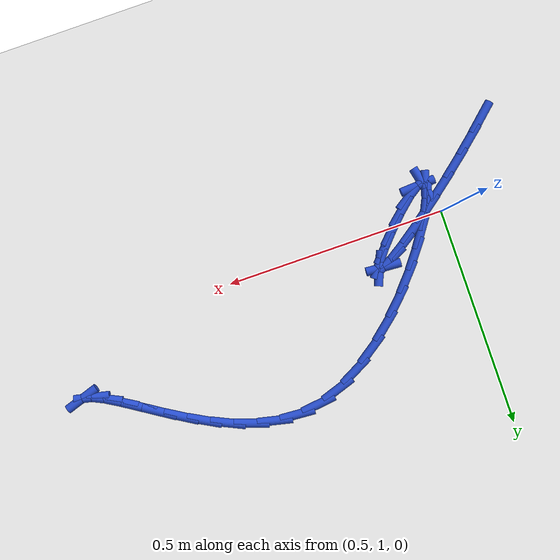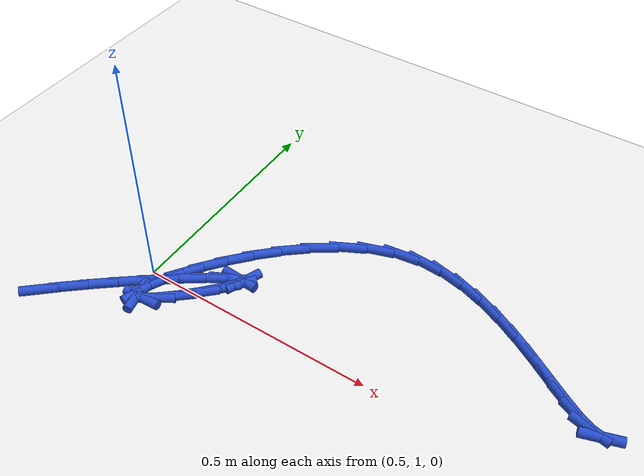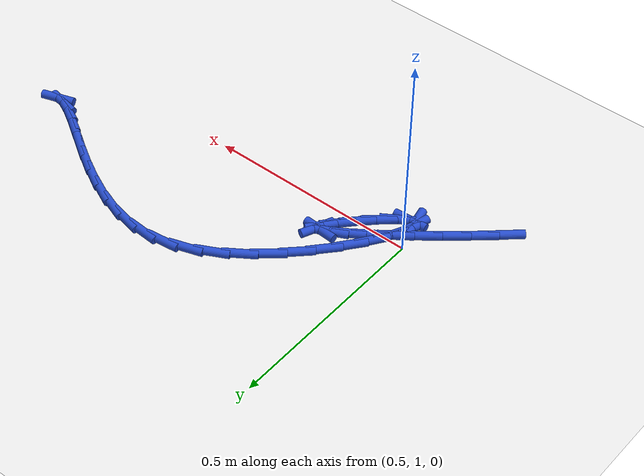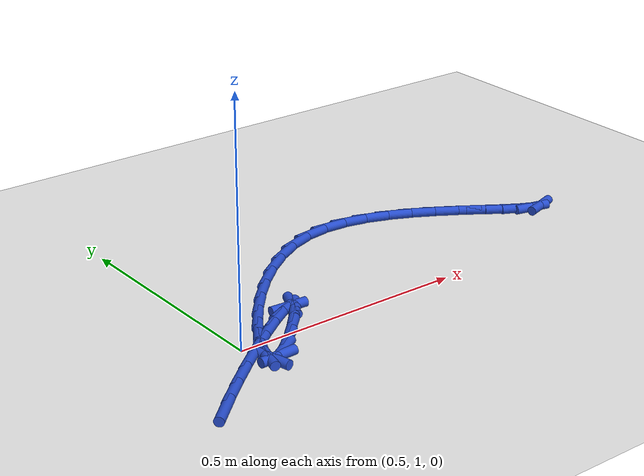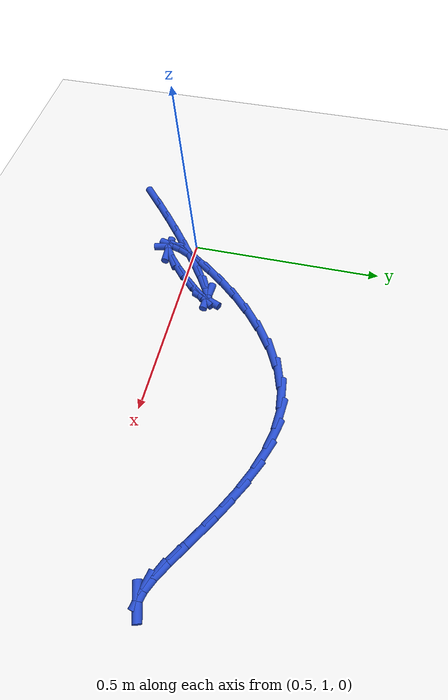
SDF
<sdf version="1.6">
 <world name="default">
  <model name="ground_plane">
   <static>1</static>
   <link name="link">
    <collision name="collision">
     <geometry><plane><normal>0 0 1</normal><size>100 100</size></plane></geometry>
     <surface><friction><ode><mu>100</mu><mu2>50</mu2></ode></friction></surface>
    </collision>
    <visual name="visual">
     <cast_shadows>0</cast_shadows>
     <geometry><plane><normal>0 0 1</normal><size>100 100</size></plane></geometry>
     <material>
      <script><uri>file://media/materials/scripts/gazebo.material</uri><name>Gazebo/WhiteGlow</name></script>
     </material>
    </visual>
   </link>
  </model>
  <model name="line">
   <link name="link_24">
    <pose>0.3486897092366932 0.8319574195822164 0.01 0 1.57 0.7389527702259174</pose>
    <collision name="collision">
     <geometry><cylinder><radius>0.01</radius><length>0.08</length></cylinder></geometry>
    </collision>
    <visual name="visual">
     <material>
      <script><name>Gazebo/Blue</name><uri>file://media/materials/scripts/gazebo.material</uri></script>
     </material>
     <geometry><cylinder><radius>0.01</radius><length>0.08</length></cylinder></geometry>
    </visual>
   </link>
   <link name="link_25">
    <pose>0.3904525261471602 0.8700104883907056 0.01 0 1.57 0.713051230423906</pose>
    <collision name="collision">
     <geometry><cylinder><radius>0.01</radius><length>0.08</length></cylinder></geometry>
    </collision>
    <visual name="visual">
     <material>
      <script><name>Gazebo/Blue</name><uri>file://media/materials/scripts/gazebo.material</uri></script>
     </material>
     <geometry><cylinder><radius>0.01</radius><length>0.08</length></cylinder></geometry>
    </visual>
   </link>
   <link name="link_26">
    <pose>0.4358175566111806 0.9092443478881133 0.01 0 1.57 0.691025362570678</pose>
    <collision name="collision">
     <geometry><cylinder><radius>0.01</radius><length>0.08</length></cylinder></geometry>
    </collision>
    <visual name="visual">
     <material>
      <script><name>Gazebo/Blue</name><uri>file://media/materials/scripts/gazebo.material</uri></script>
     </material>
     <geometry><cylinder><radius>0.01</radius><length>0.08</length></cylinder></geometry>
    </visual>
   </link>
   <link name="link_27">
    <pose>0.482954425083118 0.9482294315945302 0.01 0 1.57 0.6702667946903883</pose>
    <collision name="collision">
     <geometry><cylinder><radius>0.01</radius><length>0.08</length></cylinder></geometry>
    </collision>
    <visual name="visual">
     <material>
      <script><name>Gazebo/Blue</name><uri>file://media/materials/scripts/gazebo.material</uri></script>
     </material>
     <geometry><cylinder><radius>0.01</radius><length>0.08</length></cylinder></geometry>
    </visual>
   </link>
   <link name="link_28">
    <pose>0.5295354398446693 0.9851536672167511 0.01 0 1.57 0.6475634134900935</pose>
    <collision name="collision">
     <geometry><cylinder><radius>0.01</radius><length>0.08</length></cylinder></geometry>
    </collision>
    <visual name="visual">
     <material>
      <script><name>Gazebo/Blue</name><uri>file://media/materials/scripts/gazebo.material</uri></script>
     </material>
     <geometry><cylinder><radius>0.01</radius><length>0.08</length></cylinder></geometry>
    </visual>
   </link>
   <link name="link_29">
    <pose>0.5732328388944536 1.0182049284040373 0.01 0 1.57 0.6181152855131918</pose>
    <collision name="collision">
     <geometry><cylinder><radius>0.01</radius><length>0.08</length></cylinder></geometry>
    </collision>
    <visual name="visual">
     <material>
      <script><name>Gazebo/Blue</name><uri>file://media/materials/scripts/gazebo.material</uri></script>
     </material>
     <geometry><cylinder><radius>0.01</radius><length>0.08</length></cylinder></geometry>
    </visual>
   </link>
   <link name="link_30">
    <pose>0.6117188602310893 1.0455710888056489 0.01 0 1.57 0.5707544339160211</pose>
    <collision name="collision">
     <geometry><cylinder><radius>0.01</radius><length>0.08</length></cylinder></geometry>
    </collision>
    <visual name="visual">
     <material>
      <script><name>Gazebo/Blue</name><uri>file://media/materials/scripts/gazebo.material</uri></script>
     </material>
     <geometry><cylinder><radius>0.01</radius><length>0.08</length></cylinder></geometry>
    </visual>
   </link>
   <link name="link_31">
    <pose>0.6426657418531954 1.065440022070847 0.01 0 1.57 0.4643907801852915</pose>
    <collision name="collision">
     <geometry><cylinder><radius>0.01</radius><length>0.08</length></cylinder></geometry>
    </collision>
    <visual name="visual">
     <material>
      <script><name>Gazebo/Blue</name><uri>file://media/materials/scripts/gazebo.material</uri></script>
     </material>
     <geometry><cylinder><radius>0.01</radius><length>0.08</length></cylinder></geometry>
    </visual>
   </link>
   <link name="link_32">
    <pose>0.663745721759391 1.0759996018488929 0.01 0 1.57 -0.06315507419108564</pose>
    <collision name="collision">
     <geometry><cylinder><radius>0.01</radius><length>0.08</length></cylinder></geometry>
    </collision>
    <visual name="visual">
     <material>
      <script><name>Gazebo/Blue</name><uri>file://media/materials/scripts/gazebo.material</uri></script>
     </material>
     <geometry><cylinder><radius>0.01</radius><length>0.08</length></cylinder></geometry>
    </visual>
   </link>
   <link name="link_33">
    <pose>0.6726310379482943 1.0754377017890464 0.01 0 1.57 1.1757035624971568</pose>
    <collision name="collision">
     <geometry><cylinder><radius>0.01</radius><length>0.08</length></cylinder></geometry>
    </collision>
    <visual name="visual">
     <material>
      <script><name>Gazebo/Blue</name><uri>file://media/materials/scripts/gazebo.material</uri></script>
     </material>
     <geometry><cylinder><radius>0.01</radius><length>0.08</length></cylinder></geometry>
    </visual>
   </link>
   <link name="link_34">
    <pose>0.6670097155767161 1.0619579823420613 0.01 0 1.57 0.9104373135603664</pose>
    <collision name="collision">
     <geometry><cylinder><radius>0.01</radius><length>0.08</length></cylinder></geometry>
    </collision>
    <visual name="visual">
     <material>
      <script><name>Gazebo/Blue</name><uri>file://media/materials/scripts/gazebo.material</uri></script>
     </material>
     <geometry><cylinder><radius>0.01</radius><length>0.08</length></cylinder></geometry>
    </visual>
   </link>
   <link name="link_35">
    <pose>0.6469979684740267 1.0361922377680914 0.01 0 1.57 0.8361851049577573</pose>
    <collision name="collision">
     <geometry><cylinder><radius>0.01</radius><length>0.08</length></cylinder></geometry>
    </collision>
    <visual name="visual">
     <material>
      <script><name>Gazebo/Blue</name><uri>file://media/materials/scripts/gazebo.material</uri></script>
     </material>
     <geometry><cylinder><radius>0.01</radius><length>0.08</length></cylinder></geometry>
    </visual>
   </link>
   <link name="link_36">
    <pose>0.6177358901534481 1.0037960285002312 0.01 0 1.57 0.785380018939962</pose>
    <collision name="collision">
     <geometry><cylinder><radius>0.01</radius><length>0.08</length></cylinder></geometry>
    </collision>
    <visual name="visual">
     <material>
      <script><name>Gazebo/Blue</name><uri>file://media/materials/scripts/gazebo.material</uri></script>
     </material>
     <geometry><cylinder><radius>0.01</radius><length>0.08</length></cylinder></geometry>
    </visual>
   </link>
   <link name="link_37">
    <pose>0.5849862254455672 0.971047552220585 0.01 0 1.57 0.721746941263223</pose>
    <collision name="collision">
     <geometry><cylinder><radius>0.01</radius><length>0.08</length></cylinder></geometry>
    </collision>
    <visual name="visual">
     <material>
      <script><name>Gazebo/Blue</name><uri>file://media/materials/scripts/gazebo.material</uri></script>
     </material>
     <geometry><cylinder><radius>0.01</radius><length>0.08</length></cylinder></geometry>
    </visual>
   </link>
   <link name="link_38">
    <pose>0.5545117191809708 0.9442250066112579 0.01 0 1.57 0.5802501104872282</pose>
    <collision name="collision">
     <geometry><cylinder><radius>0.01</radius><length>0.08</length></cylinder></geometry>
    </collision>
    <visual name="visual">
     <material>
      <script><name>Gazebo/Blue</name><uri>file://media/materials/scripts/gazebo.material</uri></script>
     </material>
     <geometry><cylinder><radius>0.01</radius><length>0.08</length></cylinder></geometry>
    </visual>
   </link>
   <link name="link_39">
    <pose>0.5319269630924486 0.9294201123179662 0.01 0 1.57 0.05825708162466657</pose>
    <collision name="collision">
     <geometry><cylinder><radius>0.01</radius><length>0.08</length></cylinder></geometry>
    </collision>
    <visual name="visual">
     <material>
      <script><name>Gazebo/Blue</name><uri>file://media/materials/scripts/gazebo.material</uri></script>
     </material>
     <geometry><cylinder><radius>0.01</radius><length>0.08</length></cylinder></geometry>
    </visual>
   </link>
   <link name="link_40">
    <pose>0.5196524306774435 0.9287042238161648 0.01 0 1.57 -1.3477601561598183</pose>
    <collision name="collision">
     <geometry><cylinder><radius>0.01</radius><length>0.08</length></cylinder></geometry>
    </collision>
    <visual name="visual">
     <material>
      <script><name>Gazebo/Blue</name><uri>file://media/materials/scripts/gazebo.material</uri></script>
     </material>
     <geometry><cylinder><radius>0.01</radius><length>0.08</length></cylinder></geometry>
    </visual>
   </link>
   <link name="link_41">
    <pose>0.5170287198978547 0.9402721241774438 0.01 0 1.57 1.292983288149223</pose>
    <collision name="collision">
     <geometry><cylinder><radius>0.01</radius><length>0.08</length></cylinder></geometry>
    </collision>
    <visual name="visual">
     <material>
      <script><name>Gazebo/Blue</name><uri>file://media/materials/scripts/gazebo.material</uri></script>
     </material>
     <geometry><cylinder><radius>0.01</radius><length>0.08</length></cylinder></geometry>
    </visual>
   </link>
   <link name="link_42">
    <pose>0.5232711336597228 0.9621608903502122 0.01 0 1.57 1.1285178929318345</pose>
    <collision name="collision">
     <geometry><cylinder><radius>0.01</radius><length>0.08</length></cylinder></geometry>
    </collision>
    <visual name="visual">
     <material>
      <script><name>Gazebo/Blue</name><uri>file://media/materials/scripts/gazebo.material</uri></script>
     </material>
     <geometry><cylinder><radius>0.01</radius><length>0.08</length></cylinder></geometry>
    </visual>
   </link>
   <link name="link_43">
    <pose>0.5375949748690882 0.9924075992828795 0.01 0 1.57 1.0377227075274398</pose>
    <collision name="collision">
     <geometry><cylinder><radius>0.01</radius><length>0.08</length></cylinder></geometry>
    </collision>
    <visual name="visual">
     <material>
      <script><name>Gazebo/Blue</name><uri>file://media/materials/scripts/gazebo.material</uri></script>
     </material>
     <geometry><cylinder><radius>0.01</radius><length>0.08</length></cylinder></geometry>
    </visual>
   </link>
   <link name="link_44">
    <pose>0.5592155464319909 1.0290493279238542 0.01 0 1.57 0.9702577181841804</pose>
    <collision name="collision">
     <geometry><cylinder><radius>0.01</radius><length>0.08</length></cylinder></geometry>
    </collision>
    <visual name="visual">
     <material>
      <script><name>Gazebo/Blue</name><uri>file://media/materials/scripts/gazebo.material</uri></script>
     </material>
     <geometry><cylinder><radius>0.01</radius><length>0.08</length></cylinder></geometry>
    </visual>
   </link>
   <link name="link_45">
    <pose>0.5873481512544718 1.070123153221546 0.01 0 1.57 0.9098509839630275</pose>
    <collision name="collision">
     <geometry><cylinder><radius>0.01</radius><length>0.08</length></cylinder></geometry>
    </collision>
    <visual name="visual">
     <material>
      <script><name>Gazebo/Blue</name><uri>file://media/materials/scripts/gazebo.material</uri></script>
     </material>
     <geometry><cylinder><radius>0.01</radius><length>0.08</length></cylinder></geometry>
    </visual>
   </link>
   <link name="link_46">
    <pose>0.6212080922425705 1.1136661521243638 0.01 0 1.57 0.8486396500593082</pose>
    <collision name="collision">
     <geometry><cylinder><radius>0.01</radius><length>0.08</length></cylinder></geometry>
    </collision>
    <visual name="visual">
     <material>
      <script><name>Gazebo/Blue</name><uri>file://media/materials/scripts/gazebo.material</uri></script>
     </material>
     <geometry><cylinder><radius>0.01</radius><length>0.08</length></cylinder></geometry>
    </visual>
   </link>
   <link name="link_47">
    <pose>0.6600106723023277 1.1577154015807163 0.01 0 1.57 0.781097409656063</pose>
    <collision name="collision">
     <geometry><cylinder><radius>0.01</radius><length>0.08</length></cylinder></geometry>
    </collision>
    <visual name="visual">
     <material>
      <script><name>Gazebo/Blue</name><uri>file://media/materials/scripts/gazebo.material</uri></script>
     </material>
     <geometry><cylinder><radius>0.01</radius><length>0.08</length></cylinder></geometry>
    </visual>
   </link>
   <link name="link_48">
    <pose>0.7029711943397837 1.2003079785390132 0.01 0 1.57 0.7018478522293659</pose>
    <collision name="collision">
     <geometry><cylinder><radius>0.01</radius><length>0.08</length></cylinder></geometry>
    </collision>
    <visual name="visual">
     <material>
      <script><name>Gazebo/Blue</name><uri>file://media/materials/scripts/gazebo.material</uri></script>
     </material>
     <geometry><cylinder><radius>0.01</radius><length>0.08</length></cylinder></geometry>
    </visual>
   </link>
   <link name="link_49">
    <pose>0.7493049612609786 1.2394809599476633 0.01 0 1.57 0.6044545552586118</pose>
    <collision name="collision">
     <geometry><cylinder><radius>0.01</radius><length>0.08</length></cylinder></geometry>
    </collision>
    <visual name="visual">
     <material>
      <script><name>Gazebo/Blue</name><uri>file://media/materials/scripts/gazebo.material</uri></script>
     </material>
     <geometry><cylinder><radius>0.01</radius><length>0.08</length></cylinder></geometry>
    </visual>
   </link>
   <link name="link_50">
    <pose>0.7982272759719531 1.2732714227550757 0.01 0 1.57 0.4805648511193775</pose>
    <collision name="collision">
     <geometry><cylinder><radius>0.01</radius><length>0.08</length></cylinder></geometry>
    </collision>
    <visual name="visual">
     <material>
      <script><name>Gazebo/Blue</name><uri>file://media/materials/scripts/gazebo.material</uri></script>
     </material>
     <geometry><cylinder><radius>0.01</radius><length>0.08</length></cylinder></geometry>
    </visual>
   </link>
   <link name="link_51">
    <pose>0.8489534413787472 1.2997164439096598 0.01 0 1.57 0.3198050641687751</pose>
    <collision name="collision">
     <geometry><cylinder><radius>0.01</radius><length>0.08</length></cylinder></geometry>
    </collision>
    <visual name="visual">
     <material>
      <script><name>Gazebo/Blue</name><uri>file://media/materials/scripts/gazebo.material</uri></script>
     </material>
     <geometry><cylinder><radius>0.01</radius><length>0.08</length></cylinder></geometry>
    </visual>
   </link>
   <link name="link_52">
    <pose>0.900698760387401 1.3168531003598238 0.01 0 1.57 0.12111255086555098</pose>
    <collision name="collision">
     <geometry><cylinder><radius>0.01</radius><length>0.08</length></cylinder></geometry>
    </collision>
    <visual name="visual">
     <material>
      <script><name>Gazebo/Blue</name><uri>file://media/materials/scripts/gazebo.material</uri></script>
     </material>
     <geometry><cylinder><radius>0.01</radius><length>0.08</length></cylinder></geometry>
    </visual>
   </link>
   <link name="link_53">
    <pose>0.9527135433864252 1.323183726792735 0.01 0 1.57 -0.0678575687497394</pose>
    <collision name="collision">
     <geometry><cylinder><radius>0.01</radius><length>0.08</length></cylinder></geometry>
    </collision>
    <visual name="visual">
     <material>
      <script><name>Gazebo/Blue</name><uri>file://media/materials/scripts/gazebo.material</uri></script>
     </material>
     <geometry><cylinder><radius>0.01</radius><length>0.08</length></cylinder></geometry>
    </visual>
   </link>
   <link name="link_54">
    <pose>1.004433056965143 1.3196687696387563 0.01 0 1.57 -0.22382158209609068</pose>
    <collision name="collision">
     <geometry><cylinder><radius>0.01</radius><length>0.08</length></cylinder></geometry>
    </collision>
    <visual name="visual">
     <material>
      <script><name>Gazebo/Blue</name><uri>file://media/materials/scripts/gazebo.material</uri></script>
     </material>
     <geometry><cylinder><radius>0.01</radius><length>0.08</length></cylinder></geometry>
    </visual>
   </link>
   <link name="link_55">
    <pose>1.055353425018829 1.3080774833474578 0.01 0 1.57 -0.34619085383143294</pose>
    <collision name="collision">
     <geometry><cylinder><radius>0.01</radius><length>0.08</length></cylinder></geometry>
    </collision>
    <visual name="visual">
     <material>
      <script><name>Gazebo/Blue</name><uri>file://media/materials/scripts/gazebo.material</uri></script>
     </material>
     <geometry><cylinder><radius>0.01</radius><length>0.08</length></cylinder></geometry>
    </visual>
   </link>
   <link name="link_56">
    <pose>1.1049708082517349 1.2901796115684312 0.01 0 1.57 -0.4387397024534806</pose>
    <collision name="collision">
     <geometry><cylinder><radius>0.01</radius><length>0.08</length></cylinder></geometry>
    </collision>
    <visual name="visual">
     <material>
      <script><name>Gazebo/Blue</name><uri>file://media/materials/scripts/gazebo.material</uri></script>
     </material>
     <geometry><cylinder><radius>0.01</radius><length>0.08</length></cylinder></geometry>
    </visual>
   </link>
   <link name="link_57">
    <pose>1.1527813673681118 1.2677448979512675 0.01 0 1.57 -0.5058227592215292</pose>
    <collision name="collision">
     <geometry><cylinder><radius>0.01</radius><length>0.08</length></cylinder></geometry>
    </collision>
    <visual name="visual">
     <material>
      <script><name>Gazebo/Blue</name><uri>file://media/materials/scripts/gazebo.material</uri></script>
     </material>
     <geometry><cylinder><radius>0.01</radius><length>0.08</length></cylinder></geometry>
    </visual>
   </link>
   <link name="link_58">
    <pose>1.1982812630722113 1.242543086145558 0.01 0 1.57 -0.550485620778103</pose>
    <collision name="collision">
     <geometry><cylinder><radius>0.01</radius><length>0.08</length></cylinder></geometry>
    </collision>
    <visual name="visual">
     <material>
      <script><name>Gazebo/Blue</name><uri>file://media/materials/scripts/gazebo.material</uri></script>
     </material>
     <geometry><cylinder><radius>0.01</radius><length>0.08</length></cylinder></geometry>
    </visual>
   </link>
   <link name="link_59">
    <pose>1.2409666560682844 1.216343919800894 0.01 0 1.57 -0.5734803814604125</pose>
    <collision name="collision">
     <geometry><cylinder><radius>0.01</radius><length>0.08</length></cylinder></geometry>
    </collision>
    <visual name="visual">
     <material>
      <script><name>Gazebo/Blue</name><uri>file://media/materials/scripts/gazebo.material</uri></script>
     </material>
     <geometry><cylinder><radius>0.01</radius><length>0.08</length></cylinder></geometry>
    </visual>
   </link>
   <link name="link_60">
    <pose>1.2803337070605834 1.1909171425668676 0.01 0 1.57 -0.5720213942434541</pose>
    <collision name="collision">
     <geometry><cylinder><radius>0.01</radius><length>0.08</length></cylinder></geometry>
    </collision>
    <visual name="visual">
     <material>
      <script><name>Gazebo/Blue</name><uri>file://media/materials/scripts/gazebo.material</uri></script>
     </material>
     <geometry><cylinder><radius>0.01</radius><length>0.08</length></cylinder></geometry>
    </visual>
   </link>
   <link name="link_61">
    <pose>1.3158785767533585 1.1680324980930696 0.01 0 1.57 -0.5366770247992301</pose>
    <collision name="collision">
     <geometry><cylinder><radius>0.01</radius><length>0.08</length></cylinder></geometry>
    </collision>
    <visual name="visual">
     <material>
      <script><name>Gazebo/Blue</name><uri>file://media/materials/scripts/gazebo.material</uri></script>
     </material>
     <geometry><cylinder><radius>0.01</radius><length>0.08</length></cylinder></geometry>
    </visual>
   </link>
   <link name="link_62">
    <pose>1.3470974258508621 1.1494597300290916 0.01 0 1.57 -0.4420987461079205</pose>
    <collision name="collision">
     <geometry><cylinder><radius>0.01</radius><length>0.08</length></cylinder></geometry>
    </collision>
    <visual name="visual">
     <material>
      <script><name>Gazebo/Blue</name><uri>file://media/materials/scripts/gazebo.material</uri></script>
     </material>
     <geometry><cylinder><radius>0.01</radius><length>0.08</length></cylinder></geometry>
    </visual>
   </link>
   <link name="link_63">
    <pose>1.3734864150573458 1.1369685820245248 0.01 0 1.57 -0.2168954977751172</pose>
    <collision name="collision">
     <geometry><cylinder><radius>0.01</radius><length>0.08</length></cylinder></geometry>
    </collision>
    <visual name="visual">
     <material>
      <script><name>Gazebo/Blue</name><uri>file://media/materials/scripts/gazebo.material</uri></script>
     </material>
     <geometry><cylinder><radius>0.01</radius><length>0.08</length></cylinder></geometry>
    </visual>
   </link>
   <link name="link_64">
    <pose>1.3945417050770597 1.1323287977289607 0.01 0 1.57 0.3163435836537998</pose>
    <collision name="collision">
     <geometry><cylinder><radius>0.01</radius><length>0.08</length></cylinder></geometry>
    </collision>
    <visual name="visual">
     <material>
      <script><name>Gazebo/Blue</name><uri>file://media/materials/scripts/gazebo.material</uri></script>
     </material>
     <geometry><cylinder><radius>0.01</radius><length>0.08</length></cylinder></geometry>
    </visual>
   </link>
  </model>
 </world>
</sdf>
